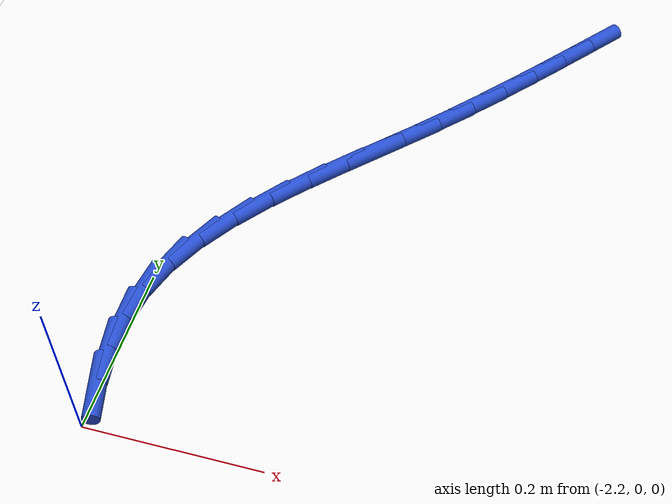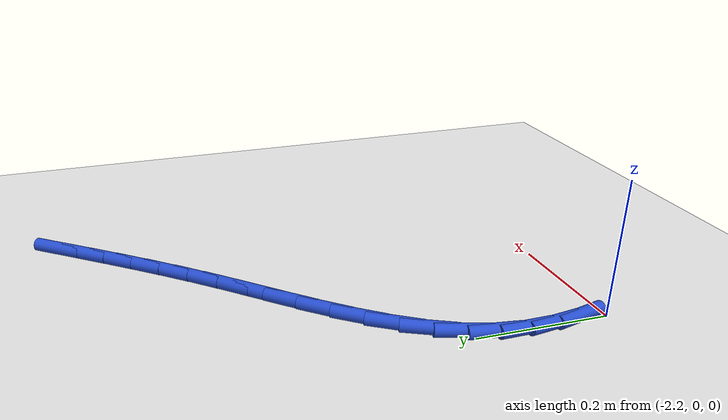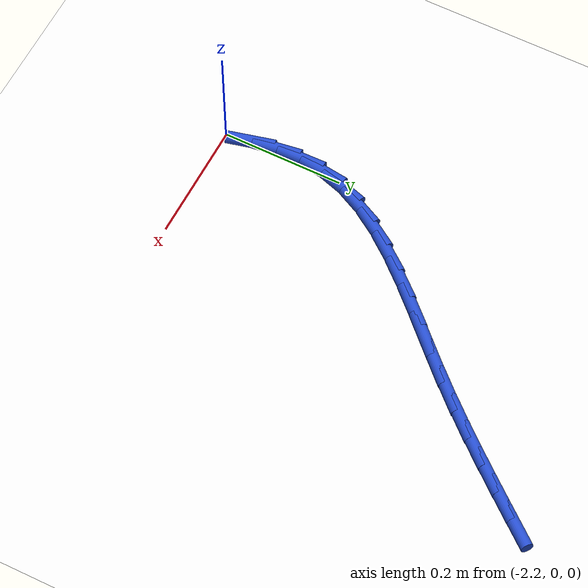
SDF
<sdf version="1.6">
 <world name="default">
  <model name="ground_plane">
   <static>1</static>
   <link name="link">
    <collision name="collision">
     <geometry><plane><normal>0 0 1</normal><size>100 100</size></plane></geometry>
     <surface><friction><ode><mu>100</mu><mu2>50</mu2></ode></friction></surface>
    </collision>
    <visual name="visual">
     <cast_shadows>0</cast_shadows>
     <geometry><plane><normal>0 0 1</normal><size>100 100</size></plane></geometry>
     <material>
      <script><uri>file://media/materials/scripts/gazebo.material</uri><name>Gazebo/WhiteGlow</name></script>
     </material>
    </visual>
   </link>
  </model>
  <model name="line">
   <link name="link_51">
    <pose>-1.7770265635024443 0.7077905318590765 0.01 0 1.57 0.8916915124959313</pose>
    <collision name="collision">
     <geometry><cylinder><radius>0.01</radius><length>0.08</length></cylinder></geometry>
    </collision>
    <visual name="visual">
     <material>
      <script><name>Gazebo/Blue</name><uri>file://media/materials/scripts/gazebo.material</uri></script>
     </material>
     <geometry><cylinder><radius>0.01</radius><length>0.08</length></cylinder></geometry>
    </visual>
   </link>
   <link name="link_52">
    <pose>-1.8073921600680296 0.6701712570035844 0.01 0 1.57 0.8864552870526387</pose>
    <collision name="collision">
     <geometry><cylinder><radius>0.01</radius><length>0.08</length></cylinder></geometry>
    </collision>
    <visual name="visual">
     <material>
      <script><name>Gazebo/Blue</name><uri>file://media/materials/scripts/gazebo.material</uri></script>
     </material>
     <geometry><cylinder><radius>0.01</radius><length>0.08</length></cylinder></geometry>
    </visual>
   </link>
   <link name="link_53">
    <pose>-1.8381614592484097 0.6324576126093272 0.01 0 1.57 0.8765979163526821</pose>
    <collision name="collision">
     <geometry><cylinder><radius>0.01</radius><length>0.08</length></cylinder></geometry>
    </collision>
    <visual name="visual">
     <material>
      <script><name>Gazebo/Blue</name><uri>file://media/materials/scripts/gazebo.material</uri></script>
     </material>
     <geometry><cylinder><radius>0.01</radius><length>0.08</length></cylinder></geometry>
    </visual>
   </link>
   <link name="link_54">
    <pose>-1.8696003554334213 0.594689496745038 0.01 0 1.57 0.8623344723722596</pose>
    <collision name="collision">
     <geometry><cylinder><radius>0.01</radius><length>0.08</length></cylinder></geometry>
    </collision>
    <visual name="visual">
     <material>
      <script><name>Gazebo/Blue</name><uri>file://media/materials/scripts/gazebo.material</uri></script>
     </material>
     <geometry><cylinder><radius>0.01</radius><length>0.08</length></cylinder></geometry>
    </visual>
   </link>
   <link name="link_55">
    <pose>-1.9019747430129041 0.5569068074794515 0.01 0 1.57 0.8439517524783946</pose>
    <collision name="collision">
     <geometry><cylinder><radius>0.01</radius><length>0.08</length></cylinder></geometry>
    </collision>
    <visual name="visual">
     <material>
      <script><name>Gazebo/Blue</name><uri>file://media/materials/scripts/gazebo.material</uri></script>
     </material>
     <geometry><cylinder><radius>0.01</radius><length>0.08</length></cylinder></geometry>
    </visual>
   </link>
   <link name="link_56">
    <pose>-1.9355505163766946 0.5191494428813023 0.01 0 1.57 0.8218210334294972</pose>
    <collision name="collision">
     <geometry><cylinder><radius>0.01</radius><length>0.08</length></cylinder></geometry>
    </collision>
    <visual name="visual">
     <material>
      <script><name>Gazebo/Blue</name><uri>file://media/materials/scripts/gazebo.material</uri></script>
     </material>
     <geometry><cylinder><radius>0.01</radius><length>0.08</length></cylinder></geometry>
    </visual>
   </link>
   <link name="link_57">
    <pose>-1.970592430051945 0.4814571692391648 0.01 0 1.57 0.8022392510476235</pose>
    <collision name="collision">
     <geometry><cylinder><radius>0.01</radius><length>0.08</length></cylinder></geometry>
    </collision>
    <visual name="visual">
     <material>
      <script><name>Gazebo/Blue</name><uri>file://media/materials/scripts/gazebo.material</uri></script>
     </material>
     <geometry><cylinder><radius>0.01</radius><length>0.08</length></cylinder></geometry>
    </visual>
   </link>
   <link name="link_58">
    <pose>-2.0069779628043185 0.44382497967550927 0.01 0 1.57 0.7992518953064738</pose>
    <collision name="collision">
     <geometry><cylinder><radius>0.01</radius><length>0.08</length></cylinder></geometry>
    </collision>
    <visual name="visual">
     <material>
      <script><name>Gazebo/Blue</name><uri>file://media/materials/scripts/gazebo.material</uri></script>
     </material>
     <geometry><cylinder><radius>0.01</radius><length>0.08</length></cylinder></geometry>
    </visual>
   </link>
   <link name="link_59">
    <pose>-2.0436348682296583 0.4061380690578862 0.01 0 1.57 0.8147411020660419</pose>
    <collision name="collision">
     <geometry><cylinder><radius>0.01</radius><length>0.08</length></cylinder></geometry>
    </collision>
    <visual name="visual">
     <material>
      <script><name>Gazebo/Blue</name><uri>file://media/materials/scripts/gazebo.material</uri></script>
     </material>
     <geometry><cylinder><radius>0.01</radius><length>0.08</length></cylinder></geometry>
    </visual>
   </link>
   <link name="link_60">
    <pose>-2.079347977004295 0.3682651088556588 0.01 0 1.57 0.8499293745787677</pose>
    <collision name="collision">
     <geometry><cylinder><radius>0.01</radius><length>0.08</length></cylinder></geometry>
    </collision>
    <visual name="visual">
     <material>
      <script><name>Gazebo/Blue</name><uri>file://media/materials/scripts/gazebo.material</uri></script>
     </material>
     <geometry><cylinder><radius>0.01</radius><length>0.08</length></cylinder></geometry>
    </visual>
   </link>
   <link name="link_61">
    <pose>-2.11290211980456 0.3300747705381895 0.01 0 1.57 0.9077017667727729</pose>
    <collision name="collision">
     <geometry><cylinder><radius>0.01</radius><length>0.08</length></cylinder></geometry>
    </collision>
    <visual name="visual">
     <material>
      <script><name>Gazebo/Blue</name><uri>file://media/materials/scripts/gazebo.material</uri></script>
     </material>
     <geometry><cylinder><radius>0.01</radius><length>0.08</length></cylinder></geometry>
    </visual>
   </link>
   <link name="link_62">
    <pose>-2.1430821273067853 0.291435725574842 0.01 0 1.57 0.9926611179673445</pose>
    <collision name="collision">
     <geometry><cylinder><radius>0.01</radius><length>0.08</length></cylinder></geometry>
    </collision>
    <visual name="visual">
     <material>
      <script><name>Gazebo/Blue</name><uri>file://media/materials/scripts/gazebo.material</uri></script>
     </material>
     <geometry><cylinder><radius>0.01</radius><length>0.08</length></cylinder></geometry>
    </visual>
   </link>
   <link name="link_63">
    <pose>-2.168672830187301 0.25221664543497835 0.01 0 1.57 1.110741239572612</pose>
    <collision name="collision">
     <geometry><cylinder><radius>0.01</radius><length>0.08</length></cylinder></geometry>
    </collision>
    <visual name="visual">
     <material>
      <script><name>Gazebo/Blue</name><uri>file://media/materials/scripts/gazebo.material</uri></script>
     </material>
     <geometry><cylinder><radius>0.01</radius><length>0.08</length></cylinder></geometry>
    </visual>
   </link>
   <link name="link_64">
    <pose>-2.1884590591224393 0.21228620158796227 0.01 0 1.57 1.2662001948275081</pose>
    <collision name="collision">
     <geometry><cylinder><radius>0.01</radius><length>0.08</length></cylinder></geometry>
    </collision>
    <visual name="visual">
     <material>
      <script><name>Gazebo/Blue</name><uri>file://media/materials/scripts/gazebo.material</uri></script>
     </material>
     <geometry><cylinder><radius>0.01</radius><length>0.08</length></cylinder></geometry>
    </visual>
   </link>
   <link name="link_65">
    <pose>-2.2012762340398586 0.17151643268418337 0.01 0 1.57 1.4352474200831318</pose>
    <collision name="collision">
     <geometry><cylinder><radius>0.01</radius><length>0.08</length></cylinder></geometry>
    </collision>
    <visual name="visual">
     <material>
      <script><name>Gazebo/Blue</name><uri>file://media/materials/scripts/gazebo.material</uri></script>
     </material>
     <geometry><cylinder><radius>0.01</radius><length>0.08</length></cylinder></geometry>
    </visual>
   </link>
   <link name="link_66">
    <pose>-2.206959476658566 0.12984591674387888 0.01 0 1.57 -1.554373294129794</pose>
    <collision name="collision">
     <geometry><cylinder><radius>0.01</radius><length>0.08</length></cylinder></geometry>
    </collision>
    <visual name="visual">
     <material>
      <script><name>Gazebo/Blue</name><uri>file://media/materials/scripts/gazebo.material</uri></script>
     </material>
     <geometry><cylinder><radius>0.01</radius><length>0.08</length></cylinder></geometry>
    </visual>
   </link>
   <link name="link_67">
    <pose>-2.2062602574809786 0.0872742232460769 0.01 0 1.57 -1.4269569507696163</pose>
    <collision name="collision">
     <geometry><cylinder><radius>0.01</radius><length>0.08</length></cylinder></geometry>
    </collision>
    <visual name="visual">
     <material>
      <script><name>Gazebo/Blue</name><uri>file://media/materials/scripts/gazebo.material</uri></script>
     </material>
     <geometry><cylinder><radius>0.01</radius><length>0.08</length></cylinder></geometry>
    </visual>
   </link>
   <link name="link_68">
    <pose>-2.1999639260398602 0.04380317663158355 0.01 0 1.57 -1.325479342614116</pose>
    <collision name="collision">
     <geometry><cylinder><radius>0.01</radius><length>0.08</length></cylinder></geometry>
    </collision>
    <visual name="visual">
     <material>
      <script><name>Gazebo/Blue</name><uri>file://media/materials/scripts/gazebo.material</uri></script>
     </material>
     <geometry><cylinder><radius>0.01</radius><length>0.08</length></cylinder></geometry>
    </visual>
   </link>
  </model>
 </world>
</sdf>
